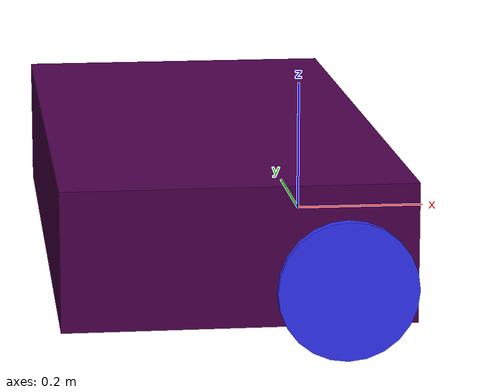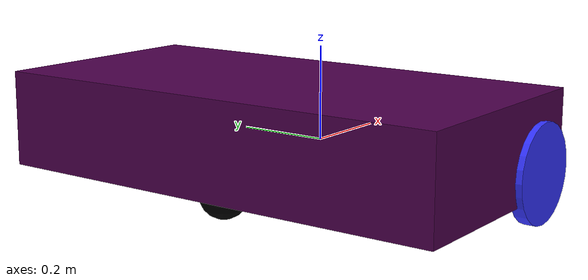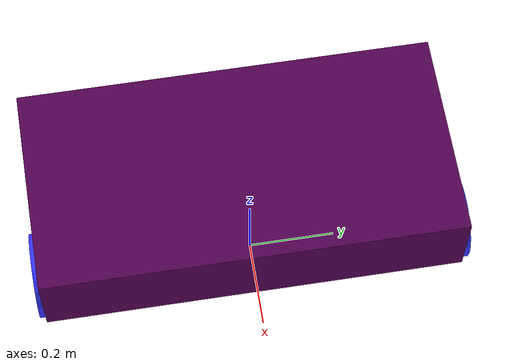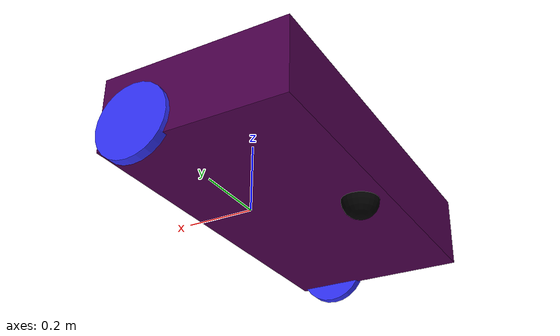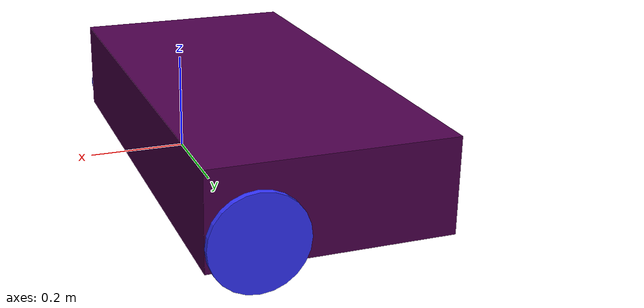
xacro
<?xml version="1.0" ?>
<robot name='robot' xmlns:xacro="http://ros.org/wiki/xacro">

    <xacro:property name="chassis_length" value="0.5"/>
    <xacro:property name="chassis_width" value="1"/>
    <xacro:property name="chassis_height" value="0.2"/>

    <xacro:property name="wheel_radius" value="0.1"/>
    <xacro:property name="wheel_thickness" value="0.026"/>
    <xacro:property name="wheel_mass" value="0.05"/>
    <xacro:property name="wheel_offset_x" value="0.4"/>
    <xacro:property name="wheel_offset_y" value="${chassis_width/2}"/>
    <xacro:property name="wheel_offset_z" value="0.05"/>

    <xacro:property name="caster_wheel_radius" value="0.05"/>
    <xacro:property name="caster_wheel_mass" value="0.01"/>
    <xacro:property name="caster_wheel_offset_x" value="0.075"/>
    <xacro:property name="caster_wheel_offset_z" value="${wheel_offset_z - caster_wheel_radius}"/>
    <xacro:property name="mass" value="1.0"/>

    <material name="white">
        <color rgba="1 1 1 1" />
    </material>

    <material name="orange">
        <color rgba="0.3 0 0.3 1"/>
    </material>

    <material name="blue">
        <color rgba="0.2 0.2 1 1"/>
    </material>

    <material name="black">
        <color rgba="0 0 0 1"/>
    </material>

    <material name="red">
        <color rgba="1 0 0 1"/>
    </material>

    <link name="base_link">
    </link>

    <link name="base_footprint">
    </link>

    <joint name="base_footprint_joint" type="fixed">
        <parent link="base_link"/>
        <child link="base_footprint"/>
        <origin xyz="0 0 -0.138" rpy="0 0 0"/>
    </joint>

    <joint name="chassis_joint" type="fixed">
        <parent link="base_link"/>
        <child link="chassis"/>
        <origin xyz="${-wheel_offset_x} 0 ${-wheel_offset_z}"/>
    </joint>

    <link name='chassis'>

        <inertial>
            <origin xyz="${chassis_length/2} 0 ${chassis_height/2}" rpy="0 0 0"/>
            <mass value="${mass}" />
            <inertia ixx="${(1/12) * mass * (chassis_width*chassis_width+chassis_height*chassis_height)}" ixy="0.0" ixz="0.0"
                    iyy="${(1/12) * mass * (chassis_length*chassis_length+chassis_height*chassis_height)}" iyz="0.0"
                    izz="${(1/12) * mass * (chassis_length*chassis_length+chassis_width*chassis_width)}" />
        </inertial>
        <visual>
            <origin xyz="${chassis_length/2} 0 ${chassis_height/2}"/>
            <geometry>
                <box size="${chassis_length} ${chassis_width} ${chassis_height}"/>
            </geometry>
            <material name="orange"/>
        </visual>
        <collision>
            <origin xyz="${chassis_length/2} 0 ${chassis_height/2}"/>
            <geometry>
                <box size="${chassis_length} ${chassis_width} ${chassis_height}"/>
            </geometry>
        </collision>
    </link>

    <gazebo reference="chassis">
        <material>Gazebo/Orange</material>
    </gazebo>

    <joint name="left_wheel_joint" type="continuous">
        <parent link="base_link"/>
        <child link="left_wheel"/>
        <origin xyz="0 ${wheel_offset_y} 0" rpy="-${pi/2} 0 ${pi}" />
        <axis xyz="0 0 1"/>
    </joint>

    <link name="left_wheel">
        <visual>
            <geometry>
                <cylinder radius="${wheel_radius}" length="${wheel_thickness}"/>
            </geometry>
            <material name="blue"/>
        </visual>
        <collision>
            <geometry>
                <cylinder radius="${wheel_radius}" length="${wheel_thickness}"/>
            </geometry>
        </collision>
        <inertial>
            <origin xyz="0 0 0" rpy="0 0 0"/>
            <mass value="${wheel_mass}" />
            <inertia ixx="${(1/12) * wheel_mass * (3*wheel_radius*wheel_radius + wheel_thickness*wheel_thickness)}" ixy="0.0" ixz="0.0"
                     iyy="${(1/12) * wheel_mass * (3*wheel_radius*wheel_radius + wheel_thickness*wheel_thickness)}" iyz="0.0"
                     izz="${(1/2) * wheel_mass * (wheel_radius*wheel_radius)}" />
        </inertial>
    </link>

    <gazebo reference="left_wheel">
        <material>Gazebo/Blue</material>
    </gazebo>

    <joint name="right_wheel_joint" type="continuous">
        <parent link="base_link"/>
        <child link="right_wheel"/>
        <origin xyz="0 ${-wheel_offset_y} 0" rpy="${pi/2} 0 ${pi}" />
        <axis xyz="0 0 -1"/>
    </joint>

    <link name="right_wheel">
        <visual>
            <geometry>
                <cylinder radius="${wheel_radius}" length="${wheel_thickness}"/>
            </geometry>
            <material name="blue"/>
        </visual>
        <collision>
            <geometry>
                <cylinder radius="${wheel_radius}" length="${wheel_thickness}"/>
            </geometry>
        </collision>
        <inertial>
            <origin xyz="0 0 0" rpy="0 0 0"/>
            <mass value="${wheel_mass}" />
            <inertia ixx="${(1/12) * wheel_mass * (3*wheel_radius*wheel_radius + wheel_thickness*wheel_thickness)}" ixy="0.0" ixz="0.0"
                     iyy="${(1/12) * wheel_mass * (3*wheel_radius*wheel_radius + wheel_thickness*wheel_thickness)}" iyz="0.0"
                     izz="${(1/2) * wheel_mass * (wheel_radius*wheel_radius)}" />
        </inertial>
    </link>

    <gazebo reference="right_wheel">
        <material>Gazebo/Blue</material>
    </gazebo>

    <joint name="caster_wheel_joint" type="fixed">
        <parent link="chassis"/>
        <child link="caster_wheel"/>
        <origin xyz="${caster_wheel_offset_x} 0 ${caster_wheel_offset_z}"/>
    </joint>

    <link name="caster_wheel">
        <visual>
            <geometry>
                <sphere radius="${caster_wheel_radius}"/>
            </geometry>
            <material name="black"/>
        </visual>
        <collision>
            <geometry>
                <sphere radius="${caster_wheel_radius}"/>
            </geometry>
        </collision>
        <inertial>
            <origin xyz="0 0 0" rpy="0 0 0"/>
            <mass value="${caster_wheel_mass}" />
            <inertia ixx="${(2/5) * caster_wheel_mass * (caster_wheel_radius*caster_wheel_radius)}" ixy="0.0" ixz="0.0"
                     iyy="${(2/5) * caster_wheel_mass * (caster_wheel_radius*caster_wheel_radius)}" iyz="0.0"
                     izz="${(2/5) * caster_wheel_mass * (caster_wheel_radius*caster_wheel_radius)}" />
        </inertial>
    </link>

    <gazebo reference="caster_wheel">
        <material>Gazebo/Black</material>
        <mu1 value="0.001"/>
        <mu2 value="0.001"/>
    </gazebo>

    <gazebo>

        <plugin
            filename="gz-sim-joint-state-publisher-system"
            name="gz::sim::systems::JointStatePublisher">
        </plugin>

        <plugin
            filename="gz-sim-diff-drive-system"
            name="gz::sim::systems::DiffDrive">
            <left_joint>left_wheel_joint</left_joint>
            <right_joint>right_wheel_joint</right_joint>
            <child_frame_id>robot/base_link</child_frame_id>
            <wheel_separation>0.291</wheel_separation>
            <wheel_radius>${wheel_radius}</wheel_radius>
            <odom_publish_frequency>10</odom_publish_frequency>
        </plugin>
    </gazebo>

</robot>
